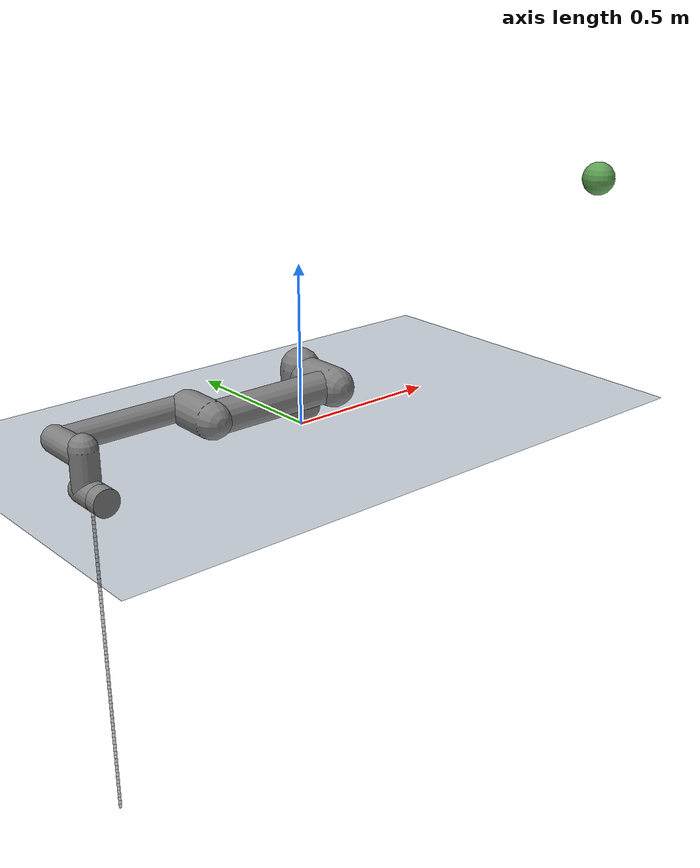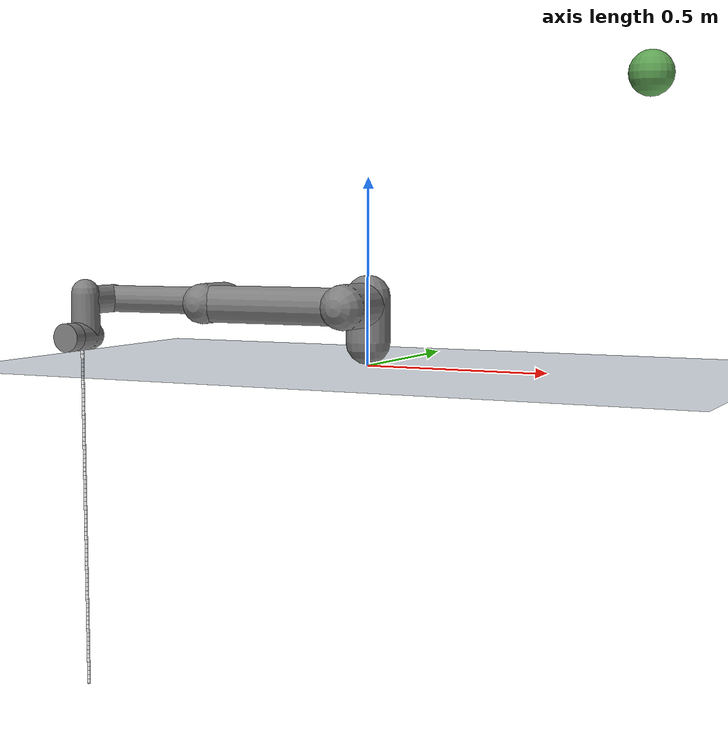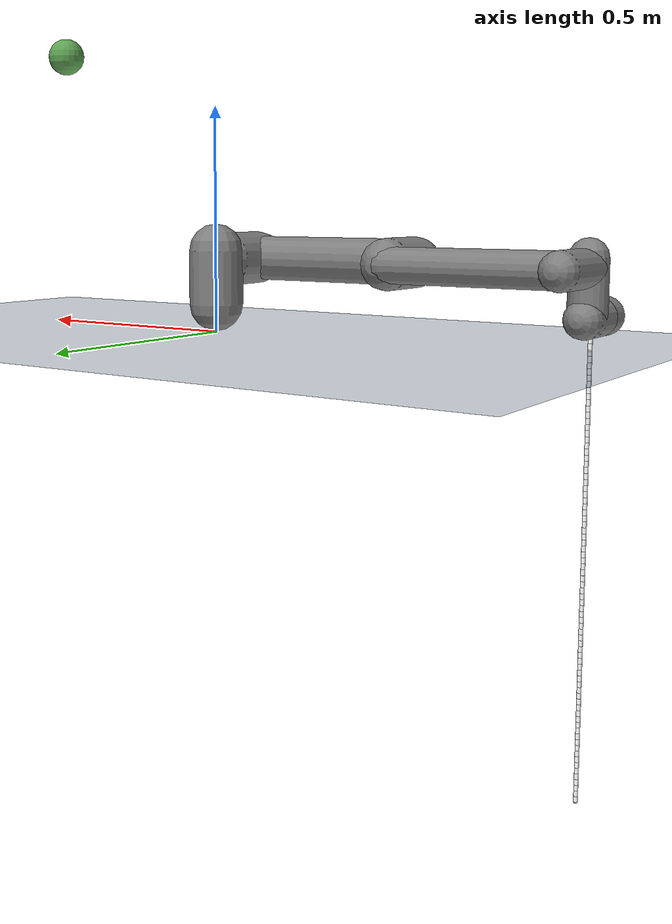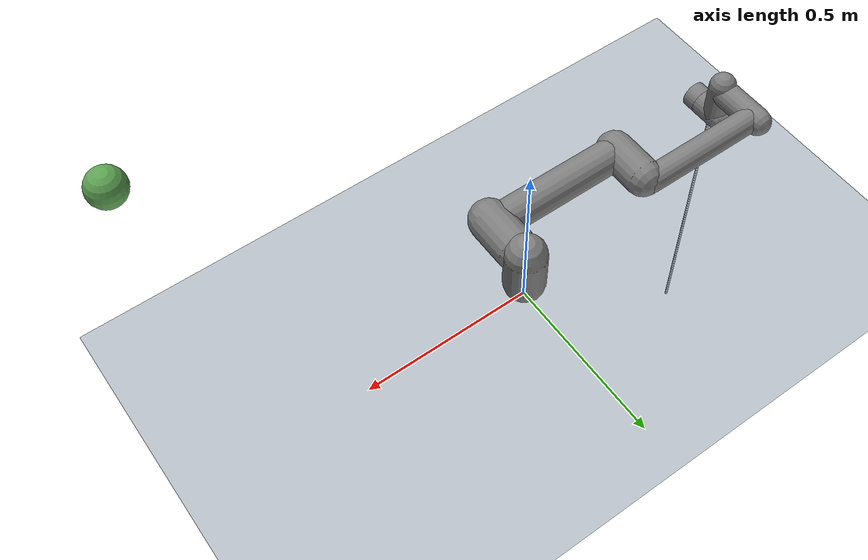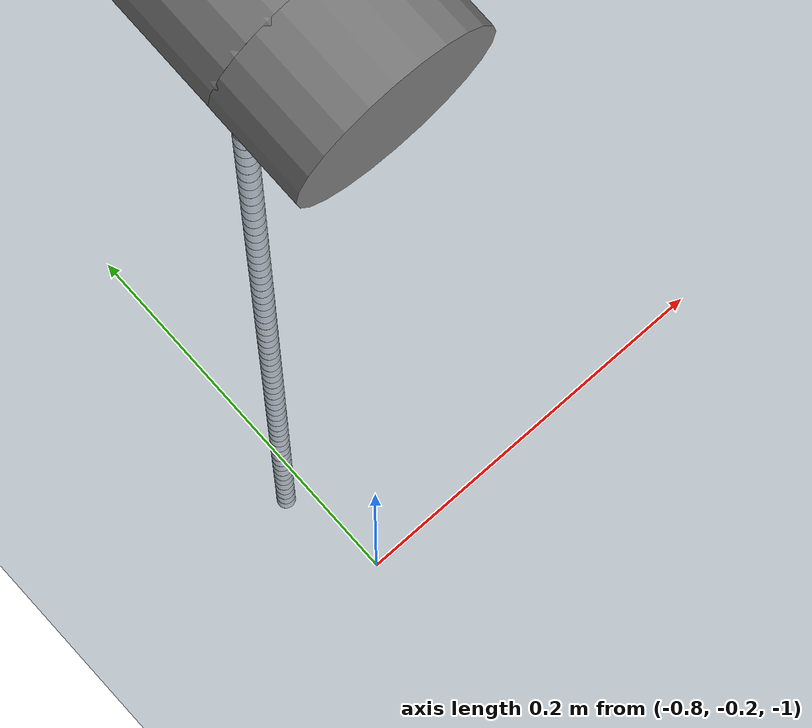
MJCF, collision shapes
<mujoco model="ur5e">
  <compiler angle="radian" meshdir="assets" autolimits="true"/>

  <option integrator="implicitfast"/>
  <option timestep="0.005" gravity="0 0 -9.81" iterations="50"/>

  <visual>
    <map force="0.1" zfar="50"/>
    <rgba haze="0.2 0.3 0.4 1"/>
    <global offwidth="1920" offheight="1080" elevation="-30" azimuth="120"/>
  </visual>

  <statistic center="0 0 1.2" extent="2"/>

  <asset>
    <texture type="skybox" builtin="gradient" rgb1=".4 .6 .8" rgb2="0 0 0" width="32" height="512"/>
    <texture name="grid" type="2d" builtin="checker" width="512" height="512" rgb1=".1 .2 .3" rgb2=".2 .3 .4"/>
    <material name="grid" texture="grid" texrepeat="10 10" texuniform="true" reflectance=".2"/>
  </asset>

  <default>
    <motor ctrlrange="-1 1" ctrllimited="true"/>
    <joint type="hinge" damping="2.0" stiffness="5" armature="0.01" limited="true" solimplimit="0 .99 .01"/>
  </default>

  <default>
    <default class="ur5e">
      <material specular="0.5" shininess="0.25"/>
      <joint axis="0 1 0" range="-6.28319 6.28319" armature="0.1"/>
      <general gaintype="fixed" biastype="affine" ctrlrange="-6.2831 6.2831" gainprm="2000" biasprm="0 -2000 -400"
        forcerange="-150 150"/>
      <default class="size3">
        <default class="size3_limited">
          <joint range="-3.1415 3.1415"/>
          <general ctrlrange="-3.1415 3.1415"/>
        </default>
      </default>
      <default class="size1">
        <general gainprm="500" biasprm="0 -500 -100" forcerange="-28 28"/>
      </default>
      <default class="visual">
        <geom type="mesh" contype="0" conaffinity="0" group="2"/>
      </default>
      <default class="collision">
        <geom type="capsule" group="3"/>
        <default class="eef_collision">
          <geom type="cylinder"/>
        </default>
      </default>
      <site size="0.001" rgba="0.5 0.5 0.5 0.3" group="4"/>
    </default>

    <default class="pandaX">
      <!-- 80-segment soft rope setting: lower hinge stiffness/damping than the original whip. -->
      <joint type="hinge" axis="1 0 0" pos="0 0 0" springref="0" stiffness="0.045" damping="0.025" limited="false"/>
    </default>
    <default class="pandaY">
      <!-- 80-segment soft rope setting: lower hinge stiffness/damping than the original whip. -->
      <joint type="hinge" axis="0 1 0" pos="0 0 0" springref="0" stiffness="0.045" damping="0.025" limited="false"/>
    </default>
  </default>

  <asset>
    <material class="ur5e" name="black" rgba="0.033 0.033 0.033 1"/>
    <material class="ur5e" name="jointgray" rgba="0.278 0.278 0.278 1"/>
    <material class="ur5e" name="linkgray" rgba="0.82 0.82 0.82 1"/>
    <material class="ur5e" name="urblue" rgba="0.49 0.678 0.8 1"/>

    <mesh file="base_0.obj"/>
    <mesh file="base_1.obj"/>
    <mesh file="shoulder_0.obj"/>
    <mesh file="shoulder_1.obj"/>
    <mesh file="shoulder_2.obj"/>
    <mesh file="upperarm_0.obj"/>
    <mesh file="upperarm_1.obj"/>
    <mesh file="upperarm_2.obj"/>
    <mesh file="upperarm_3.obj"/>
    <mesh file="forearm_0.obj"/>
    <mesh file="forearm_1.obj"/>
    <mesh file="forearm_2.obj"/>
    <mesh file="forearm_3.obj"/>
    <mesh file="wrist1_0.obj"/>
    <mesh file="wrist1_1.obj"/>
    <mesh file="wrist1_2.obj"/>
    <mesh file="wrist2_0.obj"/>
    <mesh file="wrist2_1.obj"/>
    <mesh file="wrist2_2.obj"/>
    <mesh file="wrist3.obj"/>
  </asset>

  <worldbody>
    <geom name="floor" type="plane" material="grid" size="5 5 .1" condim="3"/>
    <light name="top" pos="0 0 4" mode="trackcom" diffuse="0.8 0.8 0.8"/>
    <camera name="fixed" pos="0 -2.3 0.5" xyaxes="1 0 0 0 0.3 1.2"/>

      <body name="base" quat="0 0 0 -1" childclass="ur5e">
      <inertial mass="4.0" pos="0 0 0" diaginertia="0.00443333156 0.00443333156 0.0072"/>
      <geom mesh="base_0" material="black" class="visual"/>
      <geom mesh="base_1" material="jointgray" class="visual"/>
        <body name="shoulder_link" pos="0 0 0.163">
        <inertial mass="3.7" pos="0 0 0" diaginertia="0.0102675 0.0102675 0.00666"/>
        <joint name="shoulder_pan_joint" class="size3" axis="0 0 1"/>
        <geom mesh="shoulder_0" material="urblue" class="visual"/>
        <geom mesh="shoulder_1" material="black" class="visual"/>
        <geom mesh="shoulder_2" material="jointgray" class="visual"/>
        <geom class="collision" size="0.06 0.06" pos="0 0 -0.04"/>
          <body name="upper_arm_link" pos="0 0.138 0" quat="1 0 1 0">
          <inertial mass="8.393" pos="0 0 0.2125" diaginertia="0.133886 0.133886 0.0151074"/>
          <joint name="shoulder_lift_joint" class="size3"/>
          <geom mesh="upperarm_0" material="linkgray" class="visual"/>
          <geom mesh="upperarm_1" material="black" class="visual"/>
          <geom mesh="upperarm_2" material="jointgray" class="visual"/>
          <geom mesh="upperarm_3" material="urblue" class="visual"/>
          <geom class="collision" pos="0 -0.04 0" quat="1 1 0 0" size="0.06 0.06"/>
          <geom class="collision" size="0.05 0.2" pos="0 0 0.2"/>
            <body name="forearm_link" pos="0 -0.131 0.425">
            <inertial mass="2.275" pos="0 0 0.196" diaginertia="0.0311796 0.0311796 0.004095"/>
            <joint name="elbow_joint" class="size3_limited"/>
            <geom mesh="forearm_0" material="urblue" class="visual"/>
            <geom mesh="forearm_1" material="linkgray" class="visual"/>
            <geom mesh="forearm_2" material="black" class="visual"/>
            <geom mesh="forearm_3" material="jointgray" class="visual"/>
            <geom class="collision" pos="0 0.08 0" quat="1 1 0 0" size="0.055 0.06"/>
            <geom class="collision" size="0.038 0.19" pos="0 0 0.2"/>
              <body name="wrist_1_link" pos="0 0 0.392" quat="1 0 1 0">
              <inertial mass="1.219" pos="0 0.127 0" diaginertia="0.0025599 0.0025599 0.0021942"/>
              <joint name="wrist_1_joint" class="size1"/>
              <geom mesh="wrist1_0" material="black" class="visual"/>
              <geom mesh="wrist1_1" material="urblue" class="visual"/>
              <geom mesh="wrist1_2" material="jointgray" class="visual"/>
              <geom class="collision" pos="0 0.05 0" quat="1 1 0 0" size="0.04 0.07"/>
                <body name="wrist_2_link" pos="0 0.127 0">
                <inertial mass="1.219" pos="0 0 0.1" diaginertia="0.0025599 0.0025599 0.0021942"/>
                <joint name="wrist_2_joint" axis="0 0 1" class="size1"/>
                <geom mesh="wrist2_0" material="black" class="visual"/>
                <geom mesh="wrist2_1" material="urblue" class="visual"/>
                <geom mesh="wrist2_2" material="jointgray" class="visual"/>
                <geom class="collision" size="0.04 0.06" pos="0 0 0.04"/>
                <geom class="collision" pos="0 0.02 0.1" quat="1 1 0 0" size="0.04 0.04"/>
                  <body name="wrist_3_link" pos="0 0 0.1">
                  <inertial mass="0.1889" pos="0 0.0771683 0" quat="1 0 0 1"
                    diaginertia="0.000132134 9.90863e-05 9.90863e-05"/>
                  <joint name="wrist_3_joint" class="size1"/>
                  <geom material="linkgray" mesh="wrist3" class="visual"/>
                  <geom class="eef_collision" pos="0 0.08 0" quat="1 1 0 0" size="0.04 0.02"/>
                  <site name="attachment_site" pos="0 0.1 0" quat="-1 1 0 0"/>
                    <!-- Start of whip segments -->
                    <body name="whip_start" pos="0 0.02 0">
                      <geom type="sphere" size="0.030" rgba="1 1 1 1" contype="0" conaffinity="0"/>
                      <body name="N00" pos="0 0 0.012444">
                        <joint name="J0_0" class="pandaX"/>
                        <joint name="J1_0" class="pandaY"/>
                        <geom type="cylinder" fromto="0 0 0 0 0 0.012444" size="0.0045" mass="0" rgba="1 1 1 1"/>
                        <geom type="sphere" pos="0 0 0.012444" size="0.0045" mass="0.0010" rgba="1 1 1 1"/>
                        <body name="N01" pos="0 0 0.012444">
                          <joint name="J0_1" class="pandaX"/>
                          <joint name="J1_1" class="pandaY"/>
                          <geom type="cylinder" fromto="0 0 0 0 0 0.012444" size="0.0045" mass="0" rgba="1 1 1 1"/>
                          <geom type="sphere" pos="0 0 0.012444" size="0.0045" mass="0.0010" rgba="1 1 1 1"/>
                          <body name="N02" pos="0 0 0.012444">
                            <joint name="J0_2" class="pandaX"/>
                            <joint name="J1_2" class="pandaY"/>
                            <geom type="cylinder" fromto="0 0 0 0 0 0.012444" size="0.0045" mass="0" rgba="1 1 1 1"/>
                            <geom type="sphere" pos="0 0 0.012444" size="0.0045" mass="0.0010" rgba="1 1 1 1"/>
                            <body name="N03" pos="0 0 0.012444">
                              <joint name="J0_3" class="pandaX"/>
                              <joint name="J1_3" class="pandaY"/>
                              <geom type="cylinder" fromto="0 0 0 0 0 0.012444" size="0.0045" mass="0" rgba="1 1 1 1"/>
                              <geom type="sphere" pos="0 0 0.012444" size="0.0045" mass="0.0010" rgba="1 1 1 1"/>
                              <body name="N04" pos="0 0 0.012444">
                                <joint name="J0_4" class="pandaX"/>
                                <joint name="J1_4" class="pandaY"/>
                                <geom type="cylinder" fromto="0 0 0 0 0 0.012444" size="0.0045" mass="0" rgba="1 1 1 1"/>
                                <geom type="sphere" pos="0 0 0.012444" size="0.0045" mass="0.0010" rgba="1 1 1 1"/>
                                <body name="N05" pos="0 0 0.012444">
                                  <joint name="J0_5" class="pandaX"/>
                                  <joint name="J1_5" class="pandaY"/>
                                  <geom type="cylinder" fromto="0 0 0 0 0 0.012444" size="0.0045" mass="0" rgba="1 1 1 1"/>
                                  <geom type="sphere" pos="0 0 0.012444" size="0.0045" mass="0.0010" rgba="1 1 1 1"/>
                                  <body name="N06" pos="0 0 0.012444">
                                    <joint name="J0_6" class="pandaX"/>
                                    <joint name="J1_6" class="pandaY"/>
                                    <geom type="cylinder" fromto="0 0 0 0 0 0.012444" size="0.0045" mass="0" rgba="1 1 1 1"/>
                                    <geom type="sphere" pos="0 0 0.012444" size="0.0045" mass="0.0010" rgba="1 1 1 1"/>
                                    <body name="N07" pos="0 0 0.012444">
                                      <joint name="J0_7" class="pandaX"/>
                                      <joint name="J1_7" class="pandaY"/>
                                      <geom type="cylinder" fromto="0 0 0 0 0 0.012444" size="0.0045" mass="0" rgba="1 1 1 1"/>
                                      <geom type="sphere" pos="0 0 0.012444" size="0.0045" mass="0.0010" rgba="1 1 1 1"/>
                                      <body name="N08" pos="0 0 0.012444">
                                        <joint name="J0_8" class="pandaX"/>
                                        <joint name="J1_8" class="pandaY"/>
                                        <geom type="cylinder" fromto="0 0 0 0 0 0.012444" size="0.0045" mass="0" rgba="1 1 1 1"/>
                                        <geom type="sphere" pos="0 0 0.012444" size="0.0045" mass="0.0010" rgba="1 1 1 1"/>
                                        <body name="N09" pos="0 0 0.012444">
                                          <joint name="J0_9" class="pandaX"/>
                                          <joint name="J1_9" class="pandaY"/>
                                          <geom type="cylinder" fromto="0 0 0 0 0 0.012444" size="0.0045" mass="0" rgba="1 1 1 1"/>
                                          <geom type="sphere" pos="0 0 0.012444" size="0.0045" mass="0.0010" rgba="1 1 1 1"/>
                                          <body name="N10" pos="0 0 0.012444">
                                            <joint name="J0_10" class="pandaX"/>
                                            <joint name="J1_10" class="pandaY"/>
                                            <geom type="cylinder" fromto="0 0 0 0 0 0.012444" size="0.0045" mass="0" rgba="1 1 1 1"/>
                                            <geom type="sphere" pos="0 0 0.012444" size="0.0045" mass="0.0010" rgba="1 1 1 1"/>
                                            <body name="N11" pos="0 0 0.012444">
                                              <joint name="J0_11" class="pandaX"/>
                                              <joint name="J1_11" class="pandaY"/>
                                              <geom type="cylinder" fromto="0 0 0 0 0 0.012444" size="0.0045" mass="0" rgba="1 1 1 1"/>
                                              <geom type="sphere" pos="0 0 0.012444" size="0.0045" mass="0.0010" rgba="1 1 1 1"/>
                                              <body name="N12" pos="0 0 0.012444">
                                                <joint name="J0_12" class="pandaX"/>
                                                <joint name="J1_12" class="pandaY"/>
                                                <geom type="cylinder" fromto="0 0 0 0 0 0.012444" size="0.0045" mass="0" rgba="1 1 1 1"/>
                                                <geom type="sphere" pos="0 0 0.012444" size="0.0045" mass="0.0010" rgba="1 1 1 1"/>
                                                <body name="N13" pos="0 0 0.012444">
                                                  <joint name="J0_13" class="pandaX"/>
                                                  <joint name="J1_13" class="pandaY"/>
                                                  <geom type="cylinder" fromto="0 0 0 0 0 0.012444" size="0.0045" mass="0" rgba="1 1 1 1"/>
                                                  <geom type="sphere" pos="0 0 0.012444" size="0.0045" mass="0.0010" rgba="1 1 1 1"/>
                                                  <body name="N14" pos="0 0 0.012444">
                                                    <joint name="J0_14" class="pandaX"/>
                                                    <joint name="J1_14" class="pandaY"/>
                                                    <geom type="cylinder" fromto="0 0 0 0 0 0.012444" size="0.0045" mass="0" rgba="1 1 1 1"/>
                                                    <geom type="sphere" pos="0 0 0.012444" size="0.0045" mass="0.0010" rgba="1 1 1 1"/>
                                                    <body name="N15" pos="0 0 0.012444">
                                                      <joint name="J0_15" class="pandaX"/>
                                                      <joint name="J1_15" class="pandaY"/>
                                                      <geom type="cylinder" fromto="0 0 0 0 0 0.012444" size="0.0045" mass="0" rgba="1 1 1 1"/>
                                                      <geom type="sphere" pos="0 0 0.012444" size="0.0045" mass="0.0010" rgba="1 1 1 1"/>
                                                      <body name="N16" pos="0 0 0.012444">
                                                        <joint name="J0_16" class="pandaX"/>
                                                        <joint name="J1_16" class="pandaY"/>
                                                        <geom type="cylinder" fromto="0 0 0 0 0 0.012444" size="0.0045" mass="0" rgba="1 1 1 1"/>
                                                        <geom type="sphere" pos="0 0 0.012444" size="0.0045" mass="0.0010" rgba="1 1 1 1"/>
                                                        <body name="N17" pos="0 0 0.012444">
                                                          <joint name="J0_17" class="pandaX"/>
                                                          <joint name="J1_17" class="pandaY"/>
                                                          <geom type="cylinder" fromto="0 0 0 0 0 0.012444" size="0.0045" mass="0" rgba="1 1 1 1"/>
                                                          <geom type="sphere" pos="0 0 0.012444" size="0.0045" mass="0.0010" rgba="1 1 1 1"/>
                                                          <body name="N18" pos="0 0 0.012444">
                                                            <joint name="J0_18" class="pandaX"/>
                                                            <joint name="J1_18" class="pandaY"/>
                                                            <geom type="cylinder" fromto="0 0 0 0 0 0.012444" size="0.0045" mass="0" rgba="1 1 1 1"/>
                                                            <geom type="sphere" pos="0 0 0.012444" size="0.0045" mass="0.0010" rgba="1 1 1 1"/>
                                                            <body name="N19" pos="0 0 0.012444">
                                                              <joint name="J0_19" class="pandaX"/>
                                                              <joint name="J1_19" class="pandaY"/>
                                                              <geom type="cylinder" fromto="0 0 0 0 0 0.012444" size="0.0045" mass="0" rgba="1 1 1 1"/>
                                                              <geom type="sphere" pos="0 0 0.012444" size="0.0045" mass="0.0010" rgba="1 1 1 1"/>
                                                              <body name="N20" pos="0 0 0.012444">
                                                                <joint name="J0_20" class="pandaX"/>
                                                                <joint name="J1_20" class="pandaY"/>
                                                                <geom type="cylinder" fromto="0 0 0 0 0 0.012444" size="0.0045" mass="0" rgba="1 1 1 1"/>
                                                                <geom type="sphere" pos="0 0 0.012444" size="0.0045" mass="0.0010" rgba="1 1 1 1"/>
                                                                <body name="N21" pos="0 0 0.012444">
                                                                  <joint name="J0_21" class="pandaX"/>
                                                                  <joint name="J1_21" class="pandaY"/>
                                                                  <geom type="cylinder" fromto="0 0 0 0 0 0.012444" size="0.0045" mass="0" rgba="1 1 1 1"/>
                                                                  <geom type="sphere" pos="0 0 0.012444" size="0.0045" mass="0.0010" rgba="1 1 1 1"/>
                                                                  <body name="N22" pos="0 0 0.012444">
                                                                    <joint name="J0_22" class="pandaX"/>
                                                                    <joint name="J1_22" class="pandaY"/>
                                                                    <geom type="cylinder" fromto="0 0 0 0 0 0.012444" size="0.0045" mass="0" rgba="1 1 1 1"/>
                                                                    <geom type="sphere" pos="0 0 0.012444" size="0.0045" mass="0.0010" rgba="1 1 1 1"/>
                                                                    <body name="N23" pos="0 0 0.012444">
                                                                      <joint name="J0_23" class="pandaX"/>
                                                                      <joint name="J1_23" class="pandaY"/>
                                                                      <geom type="cylinder" fromto="0 0 0 0 0 0.012444" size="0.0045" mass="0" rgba="1 1 1 1"/>
                                                                      <geom type="sphere" pos="0 0 0.012444" size="0.0045" mass="0.0010" rgba="1 1 1 1"/>
                                                                      <body name="N24" pos="0 0 0.012444">
                                                                        <joint name="J0_24" class="pandaX"/>
                                                                        <joint name="J1_24" class="pandaY"/>
                                                                        <geom type="cylinder" fromto="0 0 0 0 0 0.012444" size="0.0045" mass="0" rgba="1 1 1 1"/>
                                                                        <geom type="sphere" pos="0 0 0.012444" size="0.0045" mass="0.0010" rgba="1 1 1 1"/>
                                                                        <body name="N25" pos="0 0 0.012444">
                                                                          <joint name="J0_25" class="pandaX"/>
                                                                          <joint name="J1_25" class="pandaY"/>
                                                                          <geom type="cylinder" fromto="0 0 0 0 0 0.012444" size="0.0045" mass="0" rgba="1 1 1 1"/>
                                                                          <geom type="sphere" pos="0 0 0.012444" size="0.0045" mass="0.0010" rgba="1 1 1 1"/>
                                                                          <body name="N26" pos="0 0 0.012444">
                                                                            <joint name="J0_26" class="pandaX"/>
                                                                            <joint name="J1_26" class="pandaY"/>
                                                                            <geom type="cylinder" fromto="0 0 0 0 0 0.012444" size="0.0045" mass="0" rgba="1 1 1 1"/>
                                                                            <geom type="sphere" pos="0 0 0.012444" size="0.0045" mass="0.0010" rgba="1 1 1 1"/>
                                                                            <body name="N27" pos="0 0 0.012444">
                                                                              <joint name="J0_27" class="pandaX"/>
                                                                              <joint name="J1_27" class="pandaY"/>
                                                                              <geom type="cylinder" fromto="0 0 0 0 0 0.012444" size="0.0045" mass="0" rgba="1 1 1 1"/>
                                                                              <geom type="sphere" pos="0 0 0.012444" size="0.0045" mass="0.0010" rgba="1 1 1 1"/>
                                                                              <body name="N28" pos="0 0 0.012444">
                                                                                <joint name="J0_28" class="pandaX"/>
                                                                                <joint name="J1_28" class="pandaY"/>
                                                                                <geom type="cylinder" fromto="0 0 0 0 0 0.012444" size="0.0045" mass="0" rgba="1 1 1 1"/>
                                                                                <geom type="sphere" pos="0 0 0.012444" size="0.0045" mass="0.0010" rgba="1 1 1 1"/>
                                                                                <body name="N29" pos="0 0 0.012444">
                                                                                  <joint name="J0_29" class="pandaX"/>
                                                                                  <joint name="J1_29" class="pandaY"/>
                                                                                  <geom type="cylinder" fromto="0 0 0 0 0 0.012444" size="0.0045" mass="0" rgba="1 1 1 1"/>
                                                                                  <geom type="sphere" pos="0 0 0.012444" size="0.0045" mass="0.0010" rgba="1 1 1 1"/>
                                                                                  <body name="N30" pos="0 0 0.012444">
                                                                                    <joint name="J0_30" class="pandaX"/>
                                                                                    <joint name="J1_30" class="pandaY"/>
                                                                                    <geom type="cylinder" fromto="0 0 0 0 0 0.012444" size="0.0045" mass="0" rgba="1 1 1 1"/>
                                                                                    <geom type="sphere" pos="0 0 0.012444" size="0.0045" mass="0.0010" rgba="1 1 1 1"/>
                                                                                    <body name="N31" pos="0 0 0.012444">
                                                                                      <joint name="J0_31" class="pandaX"/>
                                                                                      <joint name="J1_31" class="pandaY"/>
                                                                                      <geom type="cylinder" fromto="0 0 0 0 0 0.012444" size="0.0045" mass="0" rgba="1 1 1 1"/>
                                                                                      <geom type="sphere" pos="0 0 0.012444" size="0.0045" mass="0.0010" rgba="1 1 1 1"/>
                                                                                      <body name="N32" pos="0 0 0.012444">
                                                                                        <joint name="J0_32" class="pandaX"/>
                                                                                        <joint name="J1_32" class="pandaY"/>
                                                                                        <geom type="cylinder" fromto="0 0 0 0 0 0.012444" size="0.0045" mass="0" rgba="1 1 1 1"/>
                                                                                        <geom type="sphere" pos="0 0 0.012444" size="0.0045" mass="0.0010" rgba="1 1 1 1"/>
                                                                                        <body name="N33" pos="0 0 0.012444">
                                                                                          <joint name="J0_33" class="pandaX"/>
                                                                                          <joint name="J1_33" class="pandaY"/>
                                                                                          <geom type="cylinder" fromto="0 0 0 0 0 0.012444" size="0.0045" mass="0" rgba="1 1 1 1"/>
                                                                                          <geom type="sphere" pos="0 0 0.012444" size="0.0045" mass="0.0010" rgba="1 1 1 1"/>
                                                                                          <body name="N34" pos="0 0 0.012444">
                                                                                            <joint name="J0_34" class="pandaX"/>
                                                                                            <joint name="J1_34" class="pandaY"/>
                                                                                            <geom type="cylinder" fromto="0 0 0 0 0 0.012444" size="0.0045" mass="0" rgba="1 1 1 1"/>
                                                                                            <geom type="sphere" pos="0 0 0.012444" size="0.0045" mass="0.0010" rgba="1 1 1 1"/>
                                                                                            <body name="N35" pos="0 0 0.012444">
                                                                                              <joint name="J0_35" class="pandaX"/>
                                                                                              <joint name="J1_35" class="pandaY"/>
                                                                                              <geom type="cylinder" fromto="0 0 0 0 0 0.012444" size="0.0045" mass="0" rgba="1 1 1 1"/>
                                                                                              <geom type="sphere" pos="0 0 0.012444" size="0.0045" mass="0.0010" rgba="1 1 1 1"/>
                                                                                              <body name="N36" pos="0 0 0.012444">
                                                                                                <joint name="J0_36" class="pandaX"/>
                                                                                                <joint name="J1_36" class="pandaY"/>
                                                                                                <geom type="cylinder" fromto="0 0 0 0 0 0.012444" size="0.0045" mass="0" rgba="1 1 1 1"/>
                                                                                                <geom type="sphere" pos="0 0 0.012444" size="0.0045" mass="0.0010" rgba="1 1 1 1"/>
                                                                                                <body name="N37" pos="0 0 0.012444">
                                                                                                  <joint name="J0_37" class="pandaX"/>
                                                                                                  <joint name="J1_37" class="pandaY"/>
                                                                                                  <geom type="cylinder" fromto="0 0 0 0 0 0.012444" size="0.0045" mass="0" rgba="1 1 1 1"/>
                                                                                                  <geom type="sphere" pos="0 0 0.012444" size="0.0045" mass="0.0010" rgba="1 1 1 1"/>
                                                                                                  <body name="N38" pos="0 0 0.012444">
                                                                                                    <joint name="J0_38" class="pandaX"/>
                                                                                                    <joint name="J1_38" class="pandaY"/>
                                                                                                    <geom type="cylinder" fromto="0 0 0 0 0 0.012444" size="0.0045" mass="0" rgba="1 1 1 1"/>
                                                                                                    <geom type="sphere" pos="0 0 0.012444" size="0.0045" mass="0.0010" rgba="1 1 1 1"/>
                                                                                                    <body name="N39" pos="0 0 0.012444">
                                                                                                      <joint name="J0_39" class="pandaX"/>
                                                                                                      <joint name="J1_39" class="pandaY"/>
                                                                                                      <geom type="cylinder" fromto="0 0 0 0 0 0.012444" size="0.0045" mass="0" rgba="1 1 1 1"/>
                                                                                                      <geom type="sphere" pos="0 0 0.012444" size="0.0045" mass="0.0010" rgba="1 1 1 1"/>
                                                                                                      <body name="N40" pos="0 0 0.012444">
                                                                                                        <joint name="J0_40" class="pandaX"/>
                                                                                                        <joint name="J1_40" class="pandaY"/>
                                                                                                        <geom type="cylinder" fromto="0 0 0 0 0 0.012444" size="0.0045" mass="0" rgba="1 1 1 1"/>
                                                                                                        <geom type="sphere" pos="0 0 0.012444" size="0.0045" mass="0.0010" rgba="1 1 1 1"/>
                                                                                                        <body name="N41" pos="0 0 0.012444">
                                                                                                          <joint name="J0_41" class="pandaX"/>
                                                                                                          <joint name="J1_41" class="pandaY"/>
                                                                                                          <geom type="cylinder" fromto="0 0 0 0 0 0.012444" size="0.0045" mass="0" rgba="1 1 1 1"/>
                                                                                                          <geom type="sphere" pos="0 0 0.012444" size="0.0045" mass="0.0010" rgba="1 1 1 1"/>
                                                                                                          <body name="N42" pos="0 0 0.012444">
                                                                                                            <joint name="J0_42" class="pandaX"/>
                                                                                                            <joint name="J1_42" class="pandaY"/>
                                                                                                            <geom type="cylinder" fromto="0 0 0 0 0 0.012444" size="0.0045" mass="0" rgba="1 1 1 1"/>
                                                                                                            <geom type="sphere" pos="0 0 0.012444" size="0.0045" mass="0.0010" rgba="1 1 1 1"/>
                                                                                                            <body name="N43" pos="0 0 0.012444">
                                                                                                              <joint name="J0_43" class="pandaX"/>
                                                                                                              <joint name="J1_43" class="pandaY"/>
                                                                                                              <geom type="cylinder" fromto="0 0 0 0 0 0.012444" size="0.0045" mass="0" rgba="1 1 1 1"/>
                                                                                                              <geom type="sphere" pos="0 0 0.012444" size="0.0045" mass="0.0010" rgba="1 1 1 1"/>
                                                                                                              <body name="N44" pos="0 0 0.012444">
                                                                                                                <joint name="J0_44" class="pandaX"/>
                                                                                                                <joint name="J1_44" class="pandaY"/>
                                                                                                                <geom type="cylinder" fromto="0 0 0 0 0 0.012444" size="0.0045" mass="0" rgba="1 1 1 1"/>
                                                                                                                <geom type="sphere" pos="0 0 0.012444" size="0.0045" mass="0.0010" rgba="1 1 1 1"/>
                                                                                                                <body name="N45" pos="0 0 0.012444">
                                                                                                                  <joint name="J0_45" class="pandaX"/>
                                                                                                                  <joint name="J1_45" class="pandaY"/>
                                                                                                                  <geom type="cylinder" fromto="0 0 0 0 0 0.012444" size="0.0045" mass="0" rgba="1 1 1 1"/>
                                                                                                                  <geom type="sphere" pos="0 0 0.012444" size="0.0045" mass="0.0010" rgba="1 1 1 1"/>
                                                                                                                  <body name="N46" pos="0 0 0.012444">
                                                                                                                    <joint name="J0_46" class="pandaX"/>
                                                                                                                    <joint name="J1_46" class="pandaY"/>
                                                                                                                    <geom type="cylinder" fromto="0 0 0 0 0 0.012444" size="0.0045" mass="0" rgba="1 1 1 1"/>
                                                                                                                    <geom type="sphere" pos="0 0 0.012444" size="0.0045" mass="0.0010" rgba="1 1 1 1"/>
                                                                                                                    <body name="N47" pos="0 0 0.012444">
                                                                                                                      <joint name="J0_47" class="pandaX"/>
                                                                                                                      <joint name="J1_47" class="pandaY"/>
                                                                                                                      <geom type="cylinder" fromto="0 0 0 0 0 0.012444" size="0.0045" mass="0" rgba="1 1 1 1"/>
                                                                                                                      <geom type="sphere" pos="0 0 0.012444" size="0.0045" mass="0.0010" rgba="1 1 1 1"/>
                                                                                                                      <body name="N48" pos="0 0 0.012444">
                                                                                                                        <joint name="J0_48" class="pandaX"/>
                                                                                                                        <joint name="J1_48" class="pandaY"/>
                                                                                                                        <geom type="cylinder" fromto="0 0 0 0 0 0.012444" size="0.0045" mass="0" rgba="1 1 1 1"/>
                                                                                                                        <geom type="sphere" pos="0 0 0.012444" size="0.0045" mass="0.0010" rgba="1 1 1 1"/>
                                                                                                                        <body name="N49" pos="0 0 0.012444">
                                                                                                                          <joint name="J0_49" class="pandaX"/>
                                                                                                                          <joint name="J1_49" class="pandaY"/>
                                                                                                                          <geom type="cylinder" fromto="0 0 0 0 0 0.012444" size="0.0045" mass="0" rgba="1 1 1 1"/>
                                                                                                                          <geom type="sphere" pos="0 0 0.012444" size="0.0045" mass="0.0010" rgba="1 1 1 1"/>
                                                                                                                          <body name="N50" pos="0 0 0.012444">
                                                                                                                            <joint name="J0_50" class="pandaX"/>
                                                                                                                            <joint name="J1_50" class="pandaY"/>
                                                                                                                            <geom type="cylinder" fromto="0 0 0 0 0 0.012444" size="0.0045" mass="0" rgba="1 1 1 1"/>
                                                                                                                            <geom type="sphere" pos="0 0 0.012444" size="0.0045" mass="0.0010" rgba="1 1 1 1"/>
                                                                                                                            <body name="N51" pos="0 0 0.012444">
                                                                                                                              <joint name="J0_51" class="pandaX"/>
                                                                                                                              <joint name="J1_51" class="pandaY"/>
                                                                                                                              <geom type="cylinder" fromto="0 0 0 0 0 0.012444" size="0.0045" mass="0" rgba="1 1 1 1"/>
                                                                                                                              <geom type="sphere" pos="0 0 0.012444" size="0.0045" mass="0.0010" rgba="1 1 1 1"/>
                                                                                                                              <body name="N52" pos="0 0 0.012444">
                                                                                                                                <joint name="J0_52" class="pandaX"/>
                                                                                                                                <joint name="J1_52" class="pandaY"/>
                                                                                                                                <geom type="cylinder" fromto="0 0 0 0 0 0.012444" size="0.0045" mass="0" rgba="1 1 1 1"/>
                                                                                                                                <geom type="sphere" pos="0 0 0.012444" size="0.0045" mass="0.0010" rgba="1 1 1 1"/>
                                                                                                                                <body name="N53" pos="0 0 0.012444">
                                                                                                                                  <joint name="J0_53" class="pandaX"/>
                                                                                                                                  <joint name="J1_53" class="pandaY"/>
                                                                                                                                  <geom type="cylinder" fromto="0 0 0 0 0 0.012444" size="0.0045" mass="0" rgba="1 1 1 1"/>
                                                                                                                                  <geom type="sphere" pos="0 0 0.012444" size="0.0045" mass="0.0010" rgba="1 1 1 1"/>
                                                                                                                                  <body name="N54" pos="0 0 0.012444">
                                                                                                                                    <joint name="J0_54" class="pandaX"/>
                                                                                                                                    <joint name="J1_54" class="pandaY"/>
                                                                                                                                    <geom type="cylinder" fromto="0 0 0 0 0 0.012444" size="0.0045" mass="0" rgba="1 1 1 1"/>
                                                                                                                                    <geom type="sphere" pos="0 0 0.012444" size="0.0045" mass="0.0010" rgba="1 1 1 1"/>
                                                                                                                                    <body name="N55" pos="0 0 0.012444">
                                                                                                                                      <joint name="J0_55" class="pandaX"/>
                                                                                                                                      <joint name="J1_55" class="pandaY"/>
                                                                                                                                      <geom type="cylinder" fromto="0 0 0 0 0 0.012444" size="0.0045" mass="0" rgba="1 1 1 1"/>
                                                                                                                                      <geom type="sphere" pos="0 0 0.012444" size="0.0045" mass="0.0010" rgba="1 1 1 1"/>
                                                                                                                                      <body name="N56" pos="0 0 0.012444">
                                                                                                                                        <joint name="J0_56" class="pandaX"/>
                                                                                                                                        <joint name="J1_56" class="pandaY"/>
                                                                                                                                        <geom type="cylinder" fromto="0 0 0 0 0 0.012444" size="0.0045" mass="0" rgba="1 1 1 1"/>
                                                                                                                                        <geom type="sphere" pos="0 0 0.012444" size="0.0045" mass="0.0010" rgba="1 1 1 1"/>
                                                                                                                                        <body name="N57" pos="0 0 0.012444">
                                                                                                                                          <joint name="J0_57" class="pandaX"/>
                                                                                                                                          <joint name="J1_57" class="pandaY"/>
                                                                                                                                          <geom type="cylinder" fromto="0 0 0 0 0 0.012444" size="0.0045" mass="0" rgba="1 1 1 1"/>
                                                                                                                                          <geom type="sphere" pos="0 0 0.012444" size="0.0045" mass="0.0010" rgba="1 1 1 1"/>
                                                                                                                                          <body name="N58" pos="0 0 0.012444">
                                                                                                                                            <joint name="J0_58" class="pandaX"/>
                                                                                                                                            <joint name="J1_58" class="pandaY"/>
                                                                                                                                            <geom type="cylinder" fromto="0 0 0 0 0 0.012444" size="0.0045" mass="0" rgba="1 1 1 1"/>
                                                                                                                                            <geom type="sphere" pos="0 0 0.012444" size="0.0045" mass="0.0010" rgba="1 1 1 1"/>
                                                                                                                                            <body name="N59" pos="0 0 0.012444">
                                                                                                                                              <joint name="J0_59" class="pandaX"/>
                                                                                                                                              <joint name="J1_59" class="pandaY"/>
                                                                                                                                              <geom type="cylinder" fromto="0 0 0 0 0 0.012444" size="0.0045" mass="0" rgba="1 1 1 1"/>
                                                                                                                                              <geom type="sphere" pos="0 0 0.012444" size="0.0045" mass="0.0010" rgba="1 1 1 1"/>
                                                                                                                                              <body name="N60" pos="0 0 0.012444">
                                                                                                                                                <joint name="J0_60" class="pandaX"/>
                                                                                                                                                <joint name="J1_60" class="pandaY"/>
                                                                                                                                                <geom type="cylinder" fromto="0 0 0 0 0 0.012444" size="0.0045" mass="0" rgba="1 1 1 1"/>
                                                                                                                                                <geom type="sphere" pos="0 0 0.012444" size="0.0045" mass="0.0010" rgba="1 1 1 1"/>
                                                                                                                                                <body name="N61" pos="0 0 0.012444">
                                                                                                                                                  <joint name="J0_61" class="pandaX"/>
                                                                                                                                                  <joint name="J1_61" class="pandaY"/>
                                                                                                                                                  <geom type="cylinder" fromto="0 0 0 0 0 0.012444" size="0.0045" mass="0" rgba="1 1 1 1"/>
                                                                                                                                                  <geom type="sphere" pos="0 0 0.012444" size="0.0045" mass="0.0010" rgba="1 1 1 1"/>
                                                                                                                                                  <body name="N62" pos="0 0 0.012444">
                                                                                                                                                    <joint name="J0_62" class="pandaX"/>
                                                                                                                                                    <joint name="J1_62" class="pandaY"/>
                                                                                                                                                    <geom type="cylinder" fromto="0 0 0 0 0 0.012444" size="0.0045" mass="0" rgba="1 1 1 1"/>
                                                                                                                                                    <geom type="sphere" pos="0 0 0.012444" size="0.0045" mass="0.0010" rgba="1 1 1 1"/>
                                                                                                                                                    <body name="N63" pos="0 0 0.012444">
                                                                                                                                                      <joint name="J0_63" class="pandaX"/>
                                                                                                                                                      <joint name="J1_63" class="pandaY"/>
                                                                                                                                                      <geom type="cylinder" fromto="0 0 0 0 0 0.012444" size="0.0045" mass="0" rgba="1 1 1 1"/>
                                                                                                                                                      <geom type="sphere" pos="0 0 0.012444" size="0.0045" mass="0.0010" rgba="1 1 1 1"/>
                                                                                                                                                      <body name="N64" pos="0 0 0.012444">
                                                                                                                                                        <joint name="J0_64" class="pandaX"/>
                                                                                                                                                        <joint name="J1_64" class="pandaY"/>
                                                                                                                                                        <geom type="cylinder" fromto="0 0 0 0 0 0.012444" size="0.0045" mass="0" rgba="1 1 1 1"/>
                                                                                                                                                        <geom type="sphere" pos="0 0 0.012444" size="0.0045" mass="0.0010" rgba="1 1 1 1"/>
                                                                                                                                                        <body name="N65" pos="0 0 0.012444">
                                                                                                                                                          <joint name="J0_65" class="pandaX"/>
                                                                                                                                                          <joint name="J1_65" class="pandaY"/>
                                                                                                                                                          <geom type="cylinder" fromto="0 0 0 0 0 0.012444" size="0.0045" mass="0" rgba="1 1 1 1"/>
                                                                                                                                                          <geom type="sphere" pos="0 0 0.012444" size="0.0045" mass="0.0010" rgba="1 1 1 1"/>
                                                                                                                                                          <body name="N66" pos="0 0 0.012444">
                                                                                                                                                            <joint name="J0_66" class="pandaX"/>
                                                                                                                                                            <joint name="J1_66" class="pandaY"/>
                                                                                                                                                            <geom type="cylinder" fromto="0 0 0 0 0 0.012444" size="0.0045" mass="0" rgba="1 1 1 1"/>
                                                                                                                                                            <geom type="sphere" pos="0 0 0.012444" size="0.0045" mass="0.0010" rgba="1 1 1 1"/>
                                                                                                                                                            <body name="N67" pos="0 0 0.012444">
                                                                                                                                                              <joint name="J0_67" class="pandaX"/>
                                                                                                                                                              <joint name="J1_67" class="pandaY"/>
                                                                                                                                                              <geom type="cylinder" fromto="0 0 0 0 0 0.012444" size="0.0045" mass="0" rgba="1 1 1 1"/>
                                                                                                                                                              <geom type="sphere" pos="0 0 0.012444" size="0.0045" mass="0.0010" rgba="1 1 1 1"/>
                                                                                                                                                              <body name="N68" pos="0 0 0.012444">
                                                                                                                                                                <joint name="J0_68" class="pandaX"/>
                                                                                                                                                                <joint name="J1_68" class="pandaY"/>
                                                                                                                                                                <geom type="cylinder" fromto="0 0 0 0 0 0.012444" size="0.0045" mass="0" rgba="1 1 1 1"/>
                                                                                                                                                                <geom type="sphere" pos="0 0 0.012444" size="0.0045" mass="0.0010" rgba="1 1 1 1"/>
                                                                                                                                                                <body name="N69" pos="0 0 0.012444">
                                                                                                                                                                  <joint name="J0_69" class="pandaX"/>
                                                                                                                                                                  <joint name="J1_69" class="pandaY"/>
                                                                                                                                                                  <geom type="cylinder" fromto="0 0 0 0 0 0.012444" size="0.0045" mass="0" rgba="1 1 1 1"/>
                                                                                                                                                                  <geom type="sphere" pos="0 0 0.012444" size="0.0045" mass="0.0010" rgba="1 1 1 1"/>
                                                                                                                                                                  <body name="N70" pos="0 0 0.012444">
                                                                                                                                                                    <joint name="J0_70" class="pandaX"/>
                                                                                                                                                                    <joint name="J1_70" class="pandaY"/>
                                                                                                                                                                    <geom type="cylinder" fromto="0 0 0 0 0 0.012444" size="0.0045" mass="0" rgba="1 1 1 1"/>
                                                                                                                                                                    <geom type="sphere" pos="0 0 0.012444" size="0.0045" mass="0.0010" rgba="1 1 1 1"/>
                                                                                                                                                                    <body name="N71" pos="0 0 0.012444">
                                                                                                                                                                      <joint name="J0_71" class="pandaX"/>
                                                                                                                                                                      <joint name="J1_71" class="pandaY"/>
                                                                                                                                                                      <geom type="cylinder" fromto="0 0 0 0 0 0.012444" size="0.0045" mass="0" rgba="1 1 1 1"/>
                                                                                                                                                                      <geom type="sphere" pos="0 0 0.012444" size="0.0045" mass="0.0010" rgba="1 1 1 1"/>
                                                                                                                                                                      <body name="N72" pos="0 0 0.012444">
                                                                                                                                                                        <joint name="J0_72" class="pandaX"/>
                                                                                                                                                                        <joint name="J1_72" class="pandaY"/>
                                                                                                                                                                        <geom type="cylinder" fromto="0 0 0 0 0 0.012444" size="0.0045" mass="0" rgba="1 1 1 1"/>
                                                                                                                                                                        <geom type="sphere" pos="0 0 0.012444" size="0.0045" mass="0.0010" rgba="1 1 1 1"/>
                                                                                                                                                                        <body name="N73" pos="0 0 0.012444">
                                                                                                                                                                          <joint name="J0_73" class="pandaX"/>
                                                                                                                                                                          <joint name="J1_73" class="pandaY"/>
                                                                                                                                                                          <geom type="cylinder" fromto="0 0 0 0 0 0.012444" size="0.0045" mass="0" rgba="1 1 1 1"/>
                                                                                                                                                                          <geom type="sphere" pos="0 0 0.012444" size="0.0045" mass="0.0010" rgba="1 1 1 1"/>
                                                                                                                                                                          <body name="N74" pos="0 0 0.012444">
                                                                                                                                                                            <joint name="J0_74" class="pandaX"/>
                                                                                                                                                                            <joint name="J1_74" class="pandaY"/>
                                                                                                                                                                            <geom type="cylinder" fromto="0 0 0 0 0 0.012444" size="0.0045" mass="0" rgba="1 1 1 1"/>
                                                                                                                                                                            <geom type="sphere" pos="0 0 0.012444" size="0.0045" mass="0.0010" rgba="1 1 1 1"/>
                                                                                                                                                                            <body name="N75" pos="0 0 0.012444">
                                                                                                                                                                              <joint name="J0_75" class="pandaX"/>
                                                                                                                                                                              <joint name="J1_75" class="pandaY"/>
                                                                                                                                                                              <geom type="cylinder" fromto="0 0 0 0 0 0.012444" size="0.0045" mass="0" rgba="1 1 1 1"/>
                                                                                                                                                                              <geom type="sphere" pos="0 0 0.012444" size="0.0045" mass="0.0010" rgba="1 1 1 1"/>
                                                                                                                                                                              <body name="N76" pos="0 0 0.012444">
                                                                                                                                                                                <joint name="J0_76" class="pandaX"/>
                                                                                                                                                                                <joint name="J1_76" class="pandaY"/>
                                                                                                                                                                                <geom type="cylinder" fromto="0 0 0 0 0 0.012444" size="0.0045" mass="0" rgba="1 1 1 1"/>
                                                                                                                                                                                <geom type="sphere" pos="0 0 0.012444" size="0.0045" mass="0.0010" rgba="1 1 1 1"/>
                                                                                                                                                                                <body name="N77" pos="0 0 0.012444">
                                                                                                                                                                                  <joint name="J0_77" class="pandaX"/>
                                                                                                                                                                                  <joint name="J1_77" class="pandaY"/>
                                                                                                                                                                                  <geom type="cylinder" fromto="0 0 0 0 0 0.012444" size="0.0045" mass="0" rgba="1 1 1 1"/>
                                                                                                                                                                                  <geom type="sphere" pos="0 0 0.012444" size="0.0045" mass="0.0010" rgba="1 1 1 1"/>
                                                                                                                                                                                  <body name="N78" pos="0 0 0.012444">
                                                                                                                                                                                    <joint name="J0_78" class="pandaX"/>
                                                                                                                                                                                    <joint name="J1_78" class="pandaY"/>
                                                                                                                                                                                    <geom type="cylinder" fromto="0 0 0 0 0 0.012444" size="0.0045" mass="0" rgba="1 1 1 1"/>
                                                                                                                                                                                    <geom type="sphere" pos="0 0 0.012444" size="0.0045" mass="0.0010" rgba="1 1 1 1"/>
                                                                                                                                                                                    <body name="N79" pos="0 0 0.012444">
                                                                                                                                                                                      <joint name="J0_79" class="pandaX"/>
                                                                                                                                                                                      <joint name="J1_79" class="pandaY"/>
                                                                                                                                                                                      <geom type="cylinder" fromto="0 0 0 0 0 0.012444" size="0.0045" mass="0" rgba="1 1 1 1"/>
                                                                                                                                                                                      <geom type="sphere" pos="0 0 0.012444" size="0.0045" mass="0.0010" rgba="1 1 1 1"/>
                                                                                                                                                                                      <body name="whip_end" pos="0 0 0.012444">
                                                                                                                                                                                        <geom type="sphere" size="0.0045" mass="0.0010" rgba="1 1 1 1"/>
                                                                                                                                                                                      </body>
                                                                                                                                                                                    </body>
                                                                                                                                                                                  </body>
                                                                                                                                                                                </body>
                                                                                                                                                                              </body>
                                                                                                                                                                            </body>
                                                                                                                                                                          </body>
                                                                                                                                                                        </body>
                                                                                                                                                                      </body>
                                                                                                                                                                    </body>
                                                                                                                                                                  </body>
                                                                                                                                                                </body>
                                                                                                                                                              </body>
                                                                                                                                                            </body>
                                                                                                                                                          </body>
                                                                                                                                                        </body>
                                                                                                                                                      </body>
                                                                                                                                                    </body>
                                                                                                                                                  </body>
                                                                                                                                                </body>
                                                                                                                                              </body>
                                                                                                                                            </body>
                                                                                                                                          </body>
                                                                                                                                        </body>
                                                                                                                                      </body>
                                                                                                                                    </body>
                                                                                                                                  </body>
                                                                                                                                </body>
                                                                                                                              </body>
                                                                                                                            </body>
                                                                                                                          </body>
                                                                                                                        </body>
                                                                                                                      </body>
                                                                                                                    </body>
                                                                                                                  </body>
                                                                                                                </body>
                                                                                                              </body>
                                                                                                            </body>
                                                                                                          </body>
                                                                                                        </body>
                                                                                                      </body>
                                                                                                    </body>
                                                                                                  </body>
                                                                                                </body>
                                                                                              </body>
                                                                                            </body>
                                                                                          </body>
                                                                                        </body>
                                                                                      </body>
                                                                                    </body>
                                                                                  </body>
                                                                                </body>
                                                                              </body>
                                                                            </body>
                                                                          </body>
                                                                        </body>
                                                                      </body>
                                                                    </body>
                                                                  </body>
                                                                </body>
                                                              </body>
                                                            </body>
                                                          </body>
                                                        </body>
                                                      </body>
                                                    </body>
                                                  </body>
                                                </body>
                                              </body>
                                            </body>
                                          </body>
                                        </body>
                                      </body>
                                    </body>
                                  </body>
                                </body>
                              </body>
                            </body>
                          </body>
                        </body>
                      </body>
                    </body>
                    <!-- End of whip segments -->

                  </body>
                </body>
              </body>
            </body>
          </body>
        </body>
      </body>

  <body name="bottle" pos="0.85 -0.4 0.70">
    <joint name="bottle_free_joint" type="free"/>
    <geom name="bottle_geom" type="sphere" size="0.05" mass="0.05" rgba="0.37 0.64 0.33 1" contype="1" conaffinity="1"/>
    <site name="site_object" pos="0 0 0" size="0.05" type="sphere" rgba="0.37 0.64 0.33 1"/>
  </body>

  </worldbody>

  <actuator>
    <general class="size3" name="shoulder_pan" joint="shoulder_pan_joint"/>
    <general class="size3" name="shoulder_lift" joint="shoulder_lift_joint"/>
    <general class="size3_limited" name="elbow" joint="elbow_joint"/>
    <general class="size1" name="wrist_1" joint="wrist_1_joint"/>
    <general class="size1" name="wrist_2" joint="wrist_2_joint"/>
    <general class="size1" name="wrist_3" joint="wrist_3_joint"/>
  </actuator>

</mujoco>
